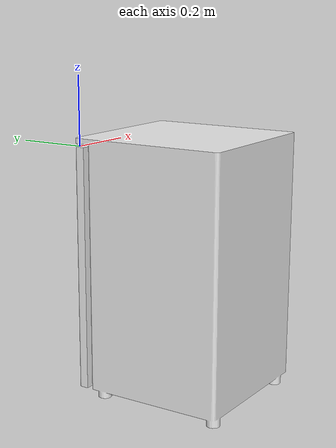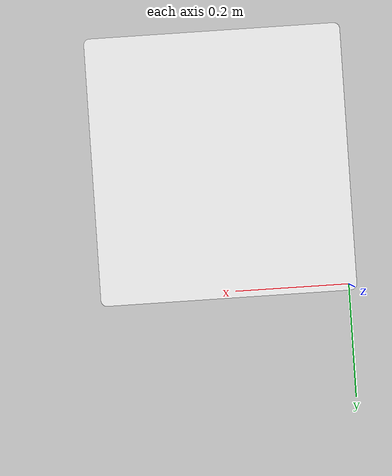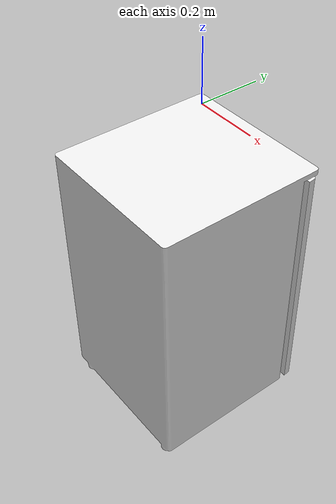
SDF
<?xml version="1.0" ?>

<sdf version="1.5">
	<model name="refrigerator_kbys">
    <joint name="world_joint" type="fixed">
      <child>hinge_base</child>
      <parent>world</parent>
      <axis>
        <limit>
          <lower>0</lower>
          <upper>0</upper>
        </limit>
        <xyz>0 1 0</xyz>
        <dynamics>
          <damping>1.0</damping>
        </dynamics>
        <use_parent_model_frame>true</use_parent_model_frame>
      </axis>
      <physics>
        <ode>
          <cfm_damping>1</cfm_damping>
        </ode>
      </physics>
    </joint>

	<link name="hinge_base">
		<pose>0 0 0 0 0 0</pose>
	</link>

	<joint name="hinge_base2body_base" type="fixed">
		<parent>hinge_base</parent>
		<child>body_base</child>
	</joint>

	<link name="body_base">
		<pose>0.2125 -0.2475 -0.755 0 0 0</pose>

		<inertial>
			<pose>0 0 0 0 0 0</pose>
			<mass>100</mass>
			<inertia>
				<ixx>70</ixx>
				<ixy>0</ixy>
				<ixz>0</ixz>
				<iyy>70</iyy>
				<iyz>0</iyz>
				<izz>40</izz>
			</inertia>
		</inertial>

		<collision name="collision_1">
			<pose>0 0 0 0 0 0</pose>
			<geometry>
				<mesh>
					<uri>model://refrigerator_kbys/meshes/frig_base.stl</uri>
				</mesh>
			</geometry>
		</collision>

		<visual name="visual">
			<pose>0 0 0 0 0 0</pose>
			<geometry>
				<mesh>
					<uri>model://refrigerator_kbys/meshes/frig_base.stl</uri>
				</mesh>
			</geometry>
			<material>
				<script>
					<uri>file://media/materials/scripts/gazebo.material</uri>
					<name>Gazebo/White</name>
				</script>
			</material>
		</visual>
	</link>

	<link name="door">
		<pose>0 0 0 0 0 0</pose>

		<inertial>
			<pose> 0.2 -0.03 0.36 0 0 0</pose>
			<mass>1</mass>
			<inertia>
				<ixx>0.04</ixx>
				<ixy>0</ixy>
				<ixz>0</ixz>
				<iyy>0.06</iyy>
				<iyz>0.0</iyz>
				<izz>0.02</izz>
			</inertia>
		</inertial>

		<collision name="collision_2">
			<pose>0 0 0 0 0 0</pose>
			<geometry>
				<mesh>
						<uri>model://refrigerator_kbys/meshes/frig_door.stl</uri>
				</mesh>
			</geometry>
		</collision>

		<visual name="visual2">
			<pose>0 0 0 0 0 0</pose>
			<geometry>
				<mesh>
						<uri>model://refrigerator_kbys/meshes/frig_door.stl</uri>
				</mesh>
			</geometry>
			<material>
				<script>
					<uri>file://media/materials/scripts/gazebo.material</uri>
					<name>Gazebo/White</name>
				</script>
			</material>
		</visual>
	</link>

    <joint name="hinge_base2door" type="revolute">
      <parent>hinge_base</parent>
      <child>door</child>
      <axis>
        <xyz>0 0 1</xyz>
        <limit>
          <lower>0</lower>
          <upper>1.58</upper>
        </limit>
        <dynamics>
          <damping>0.1</damping>
          <friction>0.0</friction>
        </dynamics>
        <use_parent_model_frame>true</use_parent_model_frame>
      </axis>
      <physics>
        <ode>
          <cfm_damping>1</cfm_damping>
        </ode>
      </physics>
    </joint>

	</model>
</sdf>
